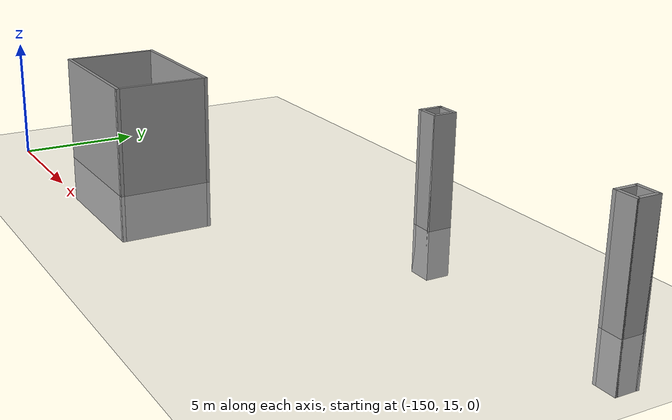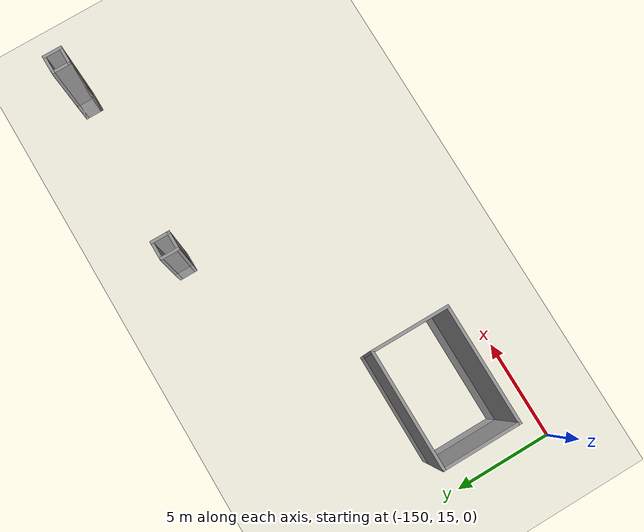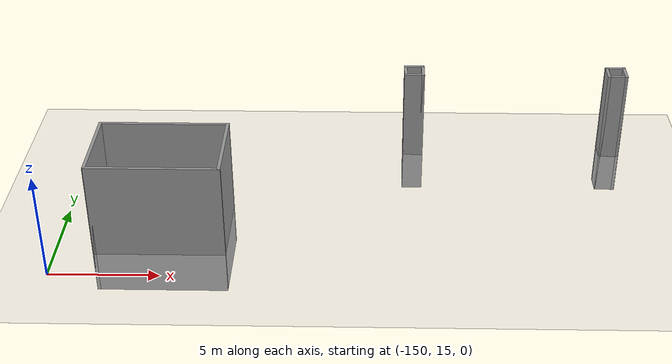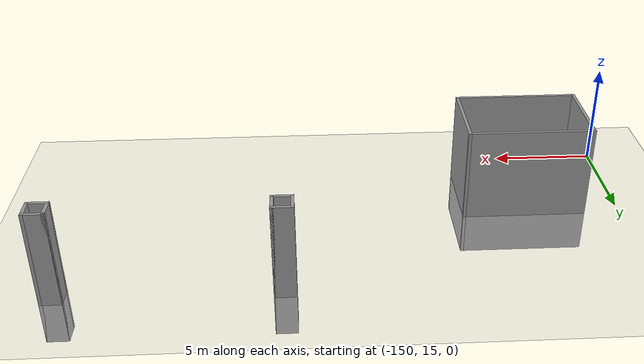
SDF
<sdf version="1.6">
 <world name="default">
  <model name="ground_plane">
   <static>1</static>
   <link name="link">
    <collision name="collision">
     <geometry><plane><normal>0 0 1</normal><size>320 320</size></plane></geometry>
     <surface>
      <contact><collide_bitmask>65535</collide_bitmask></contact>
      <friction><ode><mu>100</mu><mu2>50</mu2></ode></friction>
     </surface>
    </collision>
    <visual name="visual">
     <cast_shadows>0</cast_shadows>
     <geometry><plane><normal>0 0 1</normal><size>320 320</size></plane></geometry>
     <material>
      <script><uri>file://media/materials/scripts/gazebo.material</uri><name>Gazebo/Grey</name></script>
     </material>
    </visual>
   </link>
  </model>
  <model name="base4x6_8_clone_3">
   <pose>-145.277 18.6044 0 0 -0 0</pose>
   <link name="Wall_23">
    <collision name="Wall_23_Collision">
     <geometry><box><size>4 0.15 6.555</size></box></geometry>
     <pose>0 0 1.25 0 -0 0</pose>
    </collision>
    <visual name="Wall_23_Visual">
     <pose>0 0 1.25 0 -0 0</pose>
     <geometry><box><size>4 0.15 6.555</size></box></geometry>
     <material>
      <script><uri>file://media/materials/scripts/gazebo.material</uri><name>Gazebo/Grey</name></script>
      <ambient>1 1 1 1</ambient>
     </material>
     <meta><layer>0</layer></meta>
    </visual>
    <pose>-2.925 0 0 0 -0 -1.5708</pose>
   </link>
   <link name="Wall_24">
    <collision name="Wall_24_Collision">
     <geometry><box><size>6 0.15 6.555</size></box></geometry>
     <pose>0 0 1.25 0 -0 0</pose>
    </collision>
    <visual name="Wall_24_Visual">
     <pose>0 0 1.25 0 -0 0</pose>
     <geometry><box><size>6 0.15 6.555</size></box></geometry>
     <material>
      <script><uri>file://media/materials/scripts/gazebo.material</uri><name>Gazebo/Grey</name></script>
      <ambient>1 1 1 1</ambient>
     </material>
     <meta><layer>0</layer></meta>
    </visual>
    <pose>-0 -1.925 0 0 -0 0</pose>
   </link>
   <link name="Wall_25">
    <collision name="Wall_25_Collision">
     <geometry><box><size>4 0.15 6.555</size></box></geometry>
     <pose>0 0 1.25 0 -0 0</pose>
    </collision>
    <visual name="Wall_25_Visual">
     <pose>0 0 1.25 0 -0 0</pose>
     <geometry><box><size>4 0.15 6.555</size></box></geometry>
     <material>
      <script><uri>file://media/materials/scripts/gazebo.material</uri><name>Gazebo/Grey</name></script>
      <ambient>1 1 1 1</ambient>
     </material>
     <meta><layer>0</layer></meta>
    </visual>
    <pose>2.925 0 0 0 -0 1.5708</pose>
   </link>
   <link name="Wall_26">
    <collision name="Wall_26_Collision">
     <geometry><box><size>6 0.15 6.555</size></box></geometry>
     <pose>0 0 1.25 0 -0 0</pose>
    </collision>
    <visual name="Wall_26_Visual">
     <pose>0 0 1.25 0 -0 0</pose>
     <geometry><box><size>6 0.15 6.555</size></box></geometry>
     <material>
      <script><uri>file://media/materials/scripts/gazebo.material</uri><name>Gazebo/Grey</name></script>
      <ambient>1 1 1 1</ambient>
     </material>
     <meta><layer>0</layer></meta>
    </visual>
    <pose>-0 1.925 0 0 -0 3.14159</pose>
   </link>
   <static>1</static>
  </model>
  <model name="box_1mx1m_15_clone_5">
   <pose>-123.736 25.9696 0 0 -0 0</pose>
   <link name="Wall_10">
    <collision name="Wall_10_Collision">
     <geometry><box><size>1 0.15 6.555</size></box></geometry>
     <pose>0 0 1.25 0 -0 0</pose>
    </collision>
    <visual name="Wall_10_Visual">
     <pose>0 0 1.25 0 -0 0</pose>
     <geometry><box><size>1 0.15 6.555</size></box></geometry>
     <material>
      <script><uri>file://media/materials/scripts/gazebo.material</uri><name>Gazebo/Grey</name></script>
      <ambient>1 1 1 1</ambient>
     </material>
     <meta><layer>0</layer></meta>
    </visual>
    <pose>-0.425 0 0 0 -0 -1.5708</pose>
   </link>
   <link name="Wall_11">
    <collision name="Wall_11_Collision">
     <geometry><box><size>1 0.15 6.555</size></box></geometry>
     <pose>0 0 1.25 0 -0 0</pose>
    </collision>
    <visual name="Wall_11_Visual">
     <pose>0 0 1.25 0 -0 0</pose>
     <geometry><box><size>1 0.15 6.555</size></box></geometry>
     <material>
      <script><uri>file://media/materials/scripts/gazebo.material</uri><name>Gazebo/Grey</name></script>
      <ambient>1 1 1 1</ambient>
     </material>
     <meta><layer>0</layer></meta>
    </visual>
    <pose>0 -0.425 0 0 -0 0</pose>
   </link>
   <link name="Wall_12">
    <collision name="Wall_12_Collision">
     <geometry><box><size>1 0.15 6.555</size></box></geometry>
     <pose>0 0 1.25 0 -0 0</pose>
    </collision>
    <visual name="Wall_12_Visual">
     <pose>0 0 1.25 0 -0 0</pose>
     <geometry><box><size>1 0.15 6.555</size></box></geometry>
     <material>
      <script><uri>file://media/materials/scripts/gazebo.material</uri><name>Gazebo/Grey</name></script>
      <ambient>1 1 1 1</ambient>
     </material>
     <meta><layer>0</layer></meta>
    </visual>
    <pose>0.425 0 0 0 -0 1.5708</pose>
   </link>
   <link name="Wall_13">
    <collision name="Wall_13_Collision">
     <geometry><box><size>1 0.15 6.555</size></box></geometry>
     <pose>0 0 1.25 0 -0 0</pose>
    </collision>
    <visual name="Wall_13_Visual">
     <pose>0 0 1.25 0 -0 0</pose>
     <geometry><box><size>1 0.15 6.555</size></box></geometry>
     <material>
      <script><uri>file://media/materials/scripts/gazebo.material</uri><name>Gazebo/Grey</name></script>
      <ambient>1 1 1 1</ambient>
     </material>
     <meta><layer>0</layer></meta>
    </visual>
    <pose>0 0.425 0 0 -0 3.14159</pose>
   </link>
   <static>1</static>
  </model>
  <model name="box_1mx1m_15_clone_2_clone_2">
   <pose>-133.682 25.973 0 0 -0 0</pose>
   <link name="Wall_10">
    <collision name="Wall_10_Collision">
     <geometry><box><size>1 0.15 6.555</size></box></geometry>
     <pose>0 0 1.25 0 -0 0</pose>
    </collision>
    <visual name="Wall_10_Visual">
     <pose>0 0 1.25 0 -0 0</pose>
     <geometry><box><size>1 0.15 6.555</size></box></geometry>
     <material>
      <script><uri>file://media/materials/scripts/gazebo.material</uri><name>Gazebo/Grey</name></script>
      <ambient>1 1 1 1</ambient>
     </material>
     <meta><layer>0</layer></meta>
    </visual>
    <pose>-0.425 0 0 0 -0 -1.5708</pose>
   </link>
   <link name="Wall_11">
    <collision name="Wall_11_Collision">
     <geometry><box><size>1 0.15 6.555</size></box></geometry>
     <pose>0 0 1.25 0 -0 0</pose>
    </collision>
    <visual name="Wall_11_Visual">
     <pose>0 0 1.25 0 -0 0</pose>
     <geometry><box><size>1 0.15 6.555</size></box></geometry>
     <material>
      <script><uri>file://media/materials/scripts/gazebo.material</uri><name>Gazebo/Grey</name></script>
      <ambient>1 1 1 1</ambient>
     </material>
     <meta><layer>0</layer></meta>
    </visual>
    <pose>0 -0.425 0 0 -0 0</pose>
   </link>
   <link name="Wall_12">
    <collision name="Wall_12_Collision">
     <geometry><box><size>1 0.15 6.555</size></box></geometry>
     <pose>0 0 1.25 0 -0 0</pose>
    </collision>
    <visual name="Wall_12_Visual">
     <pose>0 0 1.25 0 -0 0</pose>
     <geometry><box><size>1 0.15 6.555</size></box></geometry>
     <material>
      <script><uri>file://media/materials/scripts/gazebo.material</uri><name>Gazebo/Grey</name></script>
      <ambient>1 1 1 1</ambient>
     </material>
     <meta><layer>0</layer></meta>
    </visual>
    <pose>0.425 0 0 0 -0 1.5708</pose>
   </link>
   <link name="Wall_13">
    <collision name="Wall_13_Collision">
     <geometry><box><size>1 0.15 6.555</size></box></geometry>
     <pose>0 0 1.25 0 -0 0</pose>
    </collision>
    <visual name="Wall_13_Visual">
     <pose>0 0 1.25 0 -0 0</pose>
     <geometry><box><size>1 0.15 6.555</size></box></geometry>
     <material>
      <script><uri>file://media/materials/scripts/gazebo.material</uri><name>Gazebo/Grey</name></script>
      <ambient>1 1 1 1</ambient>
     </material>
     <meta><layer>0</layer></meta>
    </visual>
    <pose>0 0.425 0 0 -0 3.14159</pose>
   </link>
   <static>1</static>
  </model>
 </world>
</sdf>
